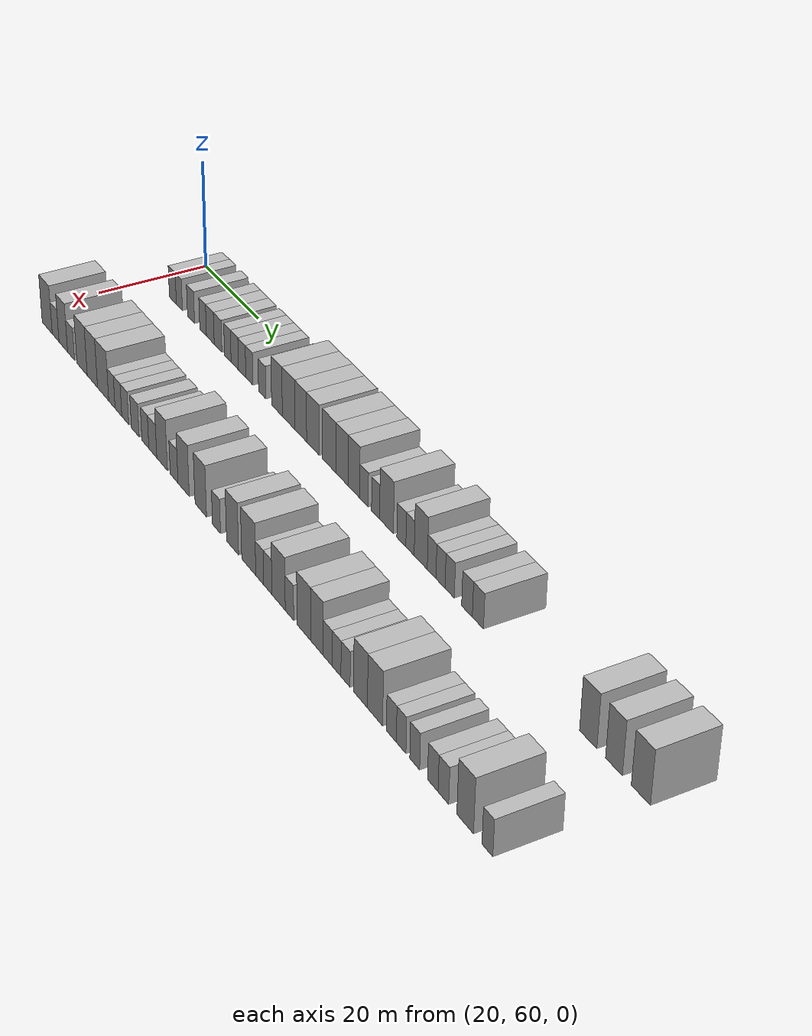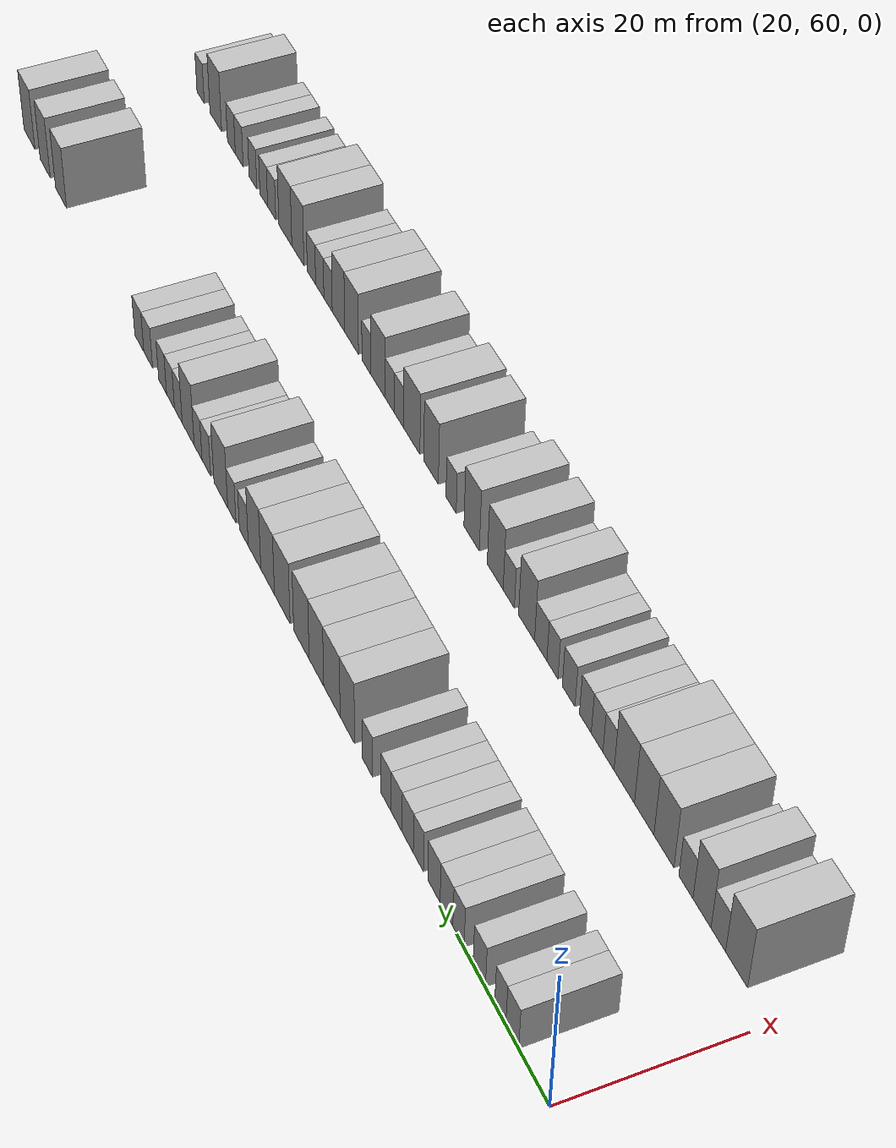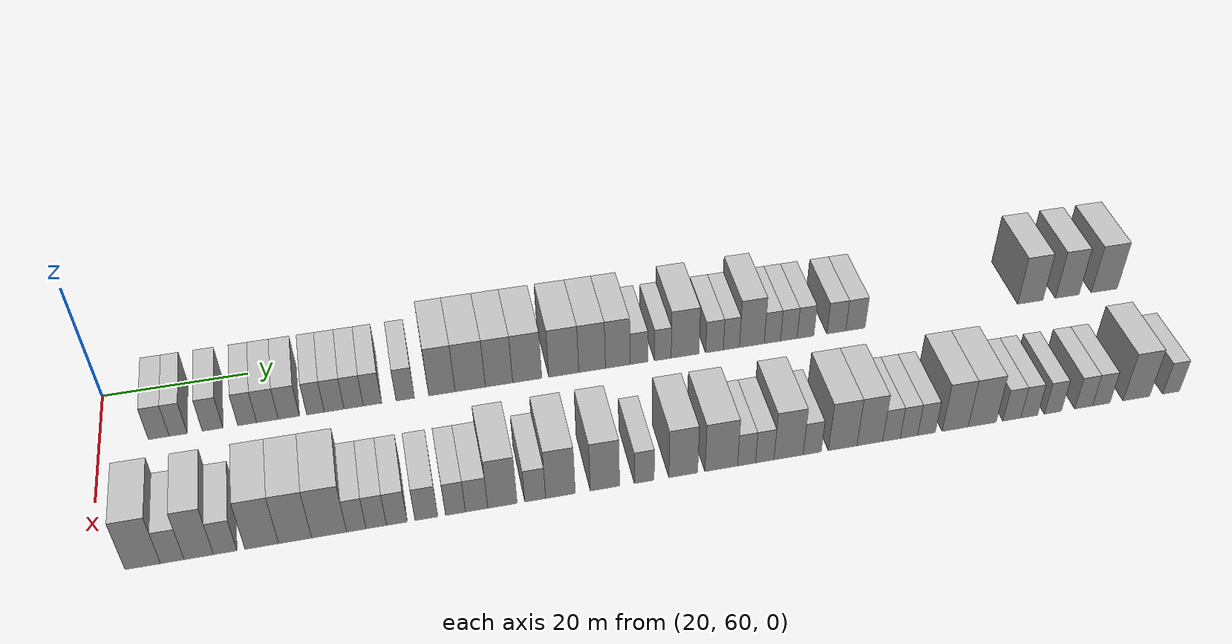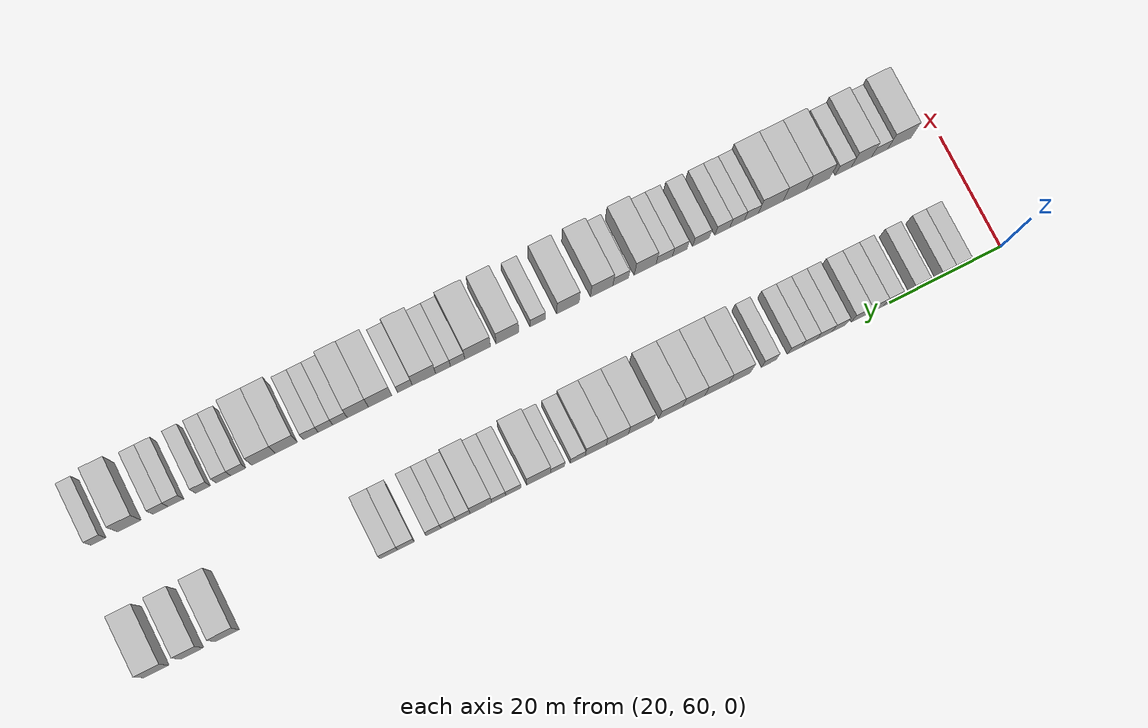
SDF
<sdf version="1.6">
 <world name="default">
  <model name="building_72">
   <static>1</static>
   <pose>25.0000 67.9203 0 0.000000 0.000000 0.000000</pose>
   <link name="link">
    <pose>0 0 3.00 0 0 0</pose>
    <collision name="collision"><geometry><box><size>10.0000 2.7523 6.0000</size></box></geometry></collision>
    <visual name="visual">
     <cast_shadows>0</cast_shadows>
     <geometry><box><size>10.0000 2.7523 6.0000</size></box></geometry>
     <material>
      <script>
       <uri>model://HANNAS_wall/materials/scripts</uri>
       <uri>model://HANNAS_wall/materials/textures</uri>
       <name>vrc/HANNAS_wall</name>
      </script>
     </material>
    </visual>
   </link>
  </model>
  <model name="building_73">
   <static>1</static>
   <pose>25.0000 70.5036 0 0.000000 0.000000 0.000000</pose>
   <link name="link">
    <pose>0 0 3.00 0 0 0</pose>
    <collision name="collision"><geometry><box><size>10.0000 2.4143 6.0000</size></box></geometry></collision>
    <visual name="visual">
     <cast_shadows>0</cast_shadows>
     <geometry><box><size>10.0000 2.4143 6.0000</size></box></geometry>
     <material>
      <script>
       <uri>model://HANNAS_wall/materials/scripts</uri>
       <uri>model://HANNAS_wall/materials/textures</uri>
       <name>vrc/HANNAS_wall</name>
      </script>
     </material>
    </visual>
   </link>
  </model>
  <model name="building_74">
   <static>1</static>
   <pose>25.0000 75.0879 0 0.000000 0.000000 0.000000</pose>
   <link name="link">
    <pose>0 0 3.00 0 0 0</pose>
    <collision name="collision"><geometry><box><size>10.0000 2.7543 6.0000</size></box></geometry></collision>
    <visual name="visual">
     <cast_shadows>0</cast_shadows>
     <geometry><box><size>10.0000 2.7543 6.0000</size></box></geometry>
     <material>
      <script>
       <uri>model://HANNAS_wall/materials/scripts</uri>
       <uri>model://HANNAS_wall/materials/textures</uri>
       <name>vrc/HANNAS_wall</name>
      </script>
     </material>
    </visual>
   </link>
  </model>
  <model name="building_75">
   <static>1</static>
   <pose>25.0000 79.7432 0 0.000000 0.000000 0.000000</pose>
   <link name="link">
    <pose>0 0 3.00 0 0 0</pose>
    <collision name="collision"><geometry><box><size>10.0000 2.5564 6.0000</size></box></geometry></collision>
    <visual name="visual">
     <cast_shadows>0</cast_shadows>
     <geometry><box><size>10.0000 2.5564 6.0000</size></box></geometry>
     <material>
      <script>
       <uri>model://HANNAS_wall/materials/scripts</uri>
       <uri>model://HANNAS_wall/materials/textures</uri>
       <name>vrc/HANNAS_wall</name>
      </script>
     </material>
    </visual>
   </link>
  </model>
  <model name="building_76">
   <static>1</static>
   <pose>25.0000 82.4895 0 0.000000 0.000000 0.000000</pose>
   <link name="link">
    <pose>0 0 3.00 0 0 0</pose>
    <collision name="collision"><geometry><box><size>10.0000 2.9362 6.0000</size></box></geometry></collision>
    <visual name="visual">
     <cast_shadows>0</cast_shadows>
     <geometry><box><size>10.0000 2.9362 6.0000</size></box></geometry>
     <material>
      <script>
       <uri>model://HANNAS_wall/materials/scripts</uri>
       <uri>model://HANNAS_wall/materials/textures</uri>
       <name>vrc/HANNAS_wall</name>
      </script>
     </material>
    </visual>
   </link>
  </model>
  <model name="building_77">
   <static>1</static>
   <pose>25.0000 85.3926 0 0.000000 0.000000 0.000000</pose>
   <link name="link">
    <pose>0 0 3.00 0 0 0</pose>
    <collision name="collision"><geometry><box><size>10.0000 2.8700 6.0000</size></box></geometry></collision>
    <visual name="visual">
     <cast_shadows>0</cast_shadows>
     <geometry><box><size>10.0000 2.8700 6.0000</size></box></geometry>
     <material>
      <script>
       <uri>model://HANNAS_wall/materials/scripts</uri>
       <uri>model://HANNAS_wall/materials/textures</uri>
       <name>vrc/HANNAS_wall</name>
      </script>
     </material>
    </visual>
   </link>
  </model>
  <model name="building_78">
   <static>1</static>
   <pose>25.0000 89.0332 0 0.000000 0.000000 0.000000</pose>
   <link name="link">
    <pose>0 0 3.00 0 0 0</pose>
    <collision name="collision"><geometry><box><size>10.0000 2.4111 6.0000</size></box></geometry></collision>
    <visual name="visual">
     <cast_shadows>0</cast_shadows>
     <geometry><box><size>10.0000 2.4111 6.0000</size></box></geometry>
     <material>
      <script>
       <uri>model://HANNAS_wall/materials/scripts</uri>
       <uri>model://HANNAS_wall/materials/textures</uri>
       <name>vrc/HANNAS_wall</name>
      </script>
     </material>
    </visual>
   </link>
  </model>
  <model name="building_79">
   <static>1</static>
   <pose>25.0000 91.5945 0 0.000000 0.000000 0.000000</pose>
   <link name="link">
    <pose>0 0 3.00 0 0 0</pose>
    <collision name="collision"><geometry><box><size>10.0000 2.7115 6.0000</size></box></geometry></collision>
    <visual name="visual">
     <cast_shadows>0</cast_shadows>
     <geometry><box><size>10.0000 2.7115 6.0000</size></box></geometry>
     <material>
      <script>
       <uri>model://HANNAS_wall/materials/scripts</uri>
       <uri>model://HANNAS_wall/materials/textures</uri>
       <name>vrc/HANNAS_wall</name>
      </script>
     </material>
    </visual>
   </link>
  </model>
  <model name="building_80">
   <static>1</static>
   <pose>25.0000 94.2840 0 0.000000 0.000000 0.000000</pose>
   <link name="link">
    <pose>0 0 3.00 0 0 0</pose>
    <collision name="collision"><geometry><box><size>10.0000 2.6676 6.0000</size></box></geometry></collision>
    <visual name="visual">
     <cast_shadows>0</cast_shadows>
     <geometry><box><size>10.0000 2.6676 6.0000</size></box></geometry>
     <material>
      <script>
       <uri>model://HANNAS_wall/materials/scripts</uri>
       <uri>model://HANNAS_wall/materials/textures</uri>
       <name>vrc/HANNAS_wall</name>
      </script>
     </material>
    </visual>
   </link>
  </model>
  <model name="building_81">
   <static>1</static>
   <pose>25.0000 96.8827 0 0.000000 0.000000 0.000000</pose>
   <link name="link">
    <pose>0 0 3.00 0 0 0</pose>
    <collision name="collision"><geometry><box><size>10.0000 2.5297 6.0000</size></box></geometry></collision>
    <visual name="visual">
     <cast_shadows>0</cast_shadows>
     <geometry><box><size>10.0000 2.5297 6.0000</size></box></geometry>
     <material>
      <script>
       <uri>model://HANNAS_wall/materials/scripts</uri>
       <uri>model://HANNAS_wall/materials/textures</uri>
       <name>vrc/HANNAS_wall</name>
      </script>
     </material>
    </visual>
   </link>
  </model>
  <model name="building_82">
   <static>1</static>
   <pose>25.0000 101.4351 0 0.000000 0.000000 0.000000</pose>
   <link name="link">
    <pose>0 0 3.00 0 0 0</pose>
    <collision name="collision"><geometry><box><size>10.0000 2.5752 6.0000</size></box></geometry></collision>
    <visual name="visual">
     <cast_shadows>0</cast_shadows>
     <geometry><box><size>10.0000 2.5752 6.0000</size></box></geometry>
     <material>
      <script>
       <uri>model://HANNAS_wall/materials/scripts</uri>
       <uri>model://HANNAS_wall/materials/textures</uri>
       <name>vrc/HANNAS_wall</name>
      </script>
     </material>
    </visual>
   </link>
  </model>
  <model name="building_83">
   <static>1</static>
   <pose>25.0000 106.5772 0 0.000000 0.000000 0.000000</pose>
   <link name="link">
    <pose>0 0 4.50 0 0 0</pose>
    <collision name="collision"><geometry><box><size>10.0000 3.7089 9.0000</size></box></geometry></collision>
    <visual name="visual">
     <cast_shadows>0</cast_shadows>
     <geometry><box><size>10.0000 3.7089 9.0000</size></box></geometry>
     <material>
      <script>
       <uri>model://HANNAS_wall/materials/scripts</uri>
       <uri>model://HANNAS_wall/materials/textures</uri>
       <name>vrc/HANNAS_wall</name>
      </script>
     </material>
    </visual>
   </link>
  </model>
  <model name="building_84">
   <static>1</static>
   <pose>25.0000 110.5741 0 0.000000 0.000000 0.000000</pose>
   <link name="link">
    <pose>0 0 4.50 0 0 0</pose>
    <collision name="collision"><geometry><box><size>10.0000 4.2849 9.0000</size></box></geometry></collision>
    <visual name="visual">
     <cast_shadows>0</cast_shadows>
     <geometry><box><size>10.0000 4.2849 9.0000</size></box></geometry>
     <material>
      <script>
       <uri>model://HANNAS_wall/materials/scripts</uri>
       <uri>model://HANNAS_wall/materials/textures</uri>
       <name>vrc/HANNAS_wall</name>
      </script>
     </material>
    </visual>
   </link>
  </model>
  <model name="building_85">
   <static>1</static>
   <pose>25.0000 114.6654 0 0.000000 0.000000 0.000000</pose>
   <link name="link">
    <pose>0 0 4.50 0 0 0</pose>
    <collision name="collision"><geometry><box><size>10.0000 3.8978 9.0000</size></box></geometry></collision>
    <visual name="visual">
     <cast_shadows>0</cast_shadows>
     <geometry><box><size>10.0000 3.8978 9.0000</size></box></geometry>
     <material>
      <script>
       <uri>model://HANNAS_wall/materials/scripts</uri>
       <uri>model://HANNAS_wall/materials/textures</uri>
       <name>vrc/HANNAS_wall</name>
      </script>
     </material>
    </visual>
   </link>
  </model>
  <model name="building_86">
   <static>1</static>
   <pose>25.0000 118.7020 0 0.000000 0.000000 0.000000</pose>
   <link name="link">
    <pose>0 0 4.50 0 0 0</pose>
    <collision name="collision"><geometry><box><size>10.0000 4.1752 9.0000</size></box></geometry></collision>
    <visual name="visual">
     <cast_shadows>0</cast_shadows>
     <geometry><box><size>10.0000 4.1752 9.0000</size></box></geometry>
     <material>
      <script>
       <uri>model://HANNAS_wall/materials/scripts</uri>
       <uri>model://HANNAS_wall/materials/textures</uri>
       <name>vrc/HANNAS_wall</name>
      </script>
     </material>
    </visual>
   </link>
  </model>
  <model name="building_87">
   <static>1</static>
   <pose>25.0000 123.9561 0 0.000000 0.000000 0.000000</pose>
   <link name="link">
    <pose>0 0 4.50 0 0 0</pose>
    <collision name="collision"><geometry><box><size>10.0000 4.3330 9.0000</size></box></geometry></collision>
    <visual name="visual">
     <cast_shadows>0</cast_shadows>
     <geometry><box><size>10.0000 4.3330 9.0000</size></box></geometry>
     <material>
      <script>
       <uri>model://HANNAS_wall/materials/scripts</uri>
       <uri>model://HANNAS_wall/materials/textures</uri>
       <name>vrc/HANNAS_wall</name>
      </script>
     </material>
    </visual>
   </link>
  </model>
  <model name="building_88">
   <static>1</static>
   <pose>25.0000 128.0601 0 0.000000 0.000000 0.000000</pose>
   <link name="link">
    <pose>0 0 4.50 0 0 0</pose>
    <collision name="collision"><geometry><box><size>10.0000 3.8750 9.0000</size></box></geometry></collision>
    <visual name="visual">
     <cast_shadows>0</cast_shadows>
     <geometry><box><size>10.0000 3.8750 9.0000</size></box></geometry>
     <material>
      <script>
       <uri>model://HANNAS_wall/materials/scripts</uri>
       <uri>model://HANNAS_wall/materials/textures</uri>
       <name>vrc/HANNAS_wall</name>
      </script>
     </material>
    </visual>
   </link>
  </model>
  <model name="building_89">
   <static>1</static>
   <pose>25.0000 131.8027 0 0.000000 0.000000 0.000000</pose>
   <link name="link">
    <pose>0 0 4.50 0 0 0</pose>
    <collision name="collision"><geometry><box><size>10.0000 3.6101 9.0000</size></box></geometry></collision>
    <visual name="visual">
     <cast_shadows>0</cast_shadows>
     <geometry><box><size>10.0000 3.6101 9.0000</size></box></geometry>
     <material>
      <script>
       <uri>model://HANNAS_wall/materials/scripts</uri>
       <uri>model://HANNAS_wall/materials/textures</uri>
       <name>vrc/HANNAS_wall</name>
      </script>
     </material>
    </visual>
   </link>
  </model>
  <model name="building_90">
   <static>1</static>
   <pose>25.0000 134.9088 0 0.000000 0.000000 0.000000</pose>
   <link name="link">
    <pose>0 0 3.00 0 0 0</pose>
    <collision name="collision"><geometry><box><size>10.0000 2.6020 6.0000</size></box></geometry></collision>
    <visual name="visual">
     <cast_shadows>0</cast_shadows>
     <geometry><box><size>10.0000 2.6020 6.0000</size></box></geometry>
     <material>
      <script>
       <uri>model://HANNAS_wall/materials/scripts</uri>
       <uri>model://HANNAS_wall/materials/textures</uri>
       <name>vrc/HANNAS_wall</name>
      </script>
     </material>
    </visual>
   </link>
  </model>
  <model name="building_91">
   <static>1</static>
   <pose>25.0000 138.4328 0 0.000000 0.000000 0.000000</pose>
   <link name="link">
    <pose>0 0 3.00 0 0 0</pose>
    <collision name="collision"><geometry><box><size>10.0000 2.4461 6.0000</size></box></geometry></collision>
    <visual name="visual">
     <cast_shadows>0</cast_shadows>
     <geometry><box><size>10.0000 2.4461 6.0000</size></box></geometry>
     <material>
      <script>
       <uri>model://HANNAS_wall/materials/scripts</uri>
       <uri>model://HANNAS_wall/materials/textures</uri>
       <name>vrc/HANNAS_wall</name>
      </script>
     </material>
    </visual>
   </link>
  </model>
  <model name="building_92">
   <static>1</static>
   <pose>25.0000 141.7189 0 0.000000 0.000000 0.000000</pose>
   <link name="link">
    <pose>0 0 4.50 0 0 0</pose>
    <collision name="collision"><geometry><box><size>10.0000 4.1261 9.0000</size></box></geometry></collision>
    <visual name="visual">
     <cast_shadows>0</cast_shadows>
     <geometry><box><size>10.0000 4.1261 9.0000</size></box></geometry>
     <material>
      <script>
       <uri>model://HANNAS_wall/materials/scripts</uri>
       <uri>model://HANNAS_wall/materials/textures</uri>
       <name>vrc/HANNAS_wall</name>
      </script>
     </material>
    </visual>
   </link>
  </model>
  <model name="building_93">
   <static>1</static>
   <pose>25.0000 146.1069 0 0.000000 0.000000 0.000000</pose>
   <link name="link">
    <pose>0 0 3.00 0 0 0</pose>
    <collision name="collision"><geometry><box><size>10.0000 2.6499 6.0000</size></box></geometry></collision>
    <visual name="visual">
     <cast_shadows>0</cast_shadows>
     <geometry><box><size>10.0000 2.6499 6.0000</size></box></geometry>
     <material>
      <script>
       <uri>model://HANNAS_wall/materials/scripts</uri>
       <uri>model://HANNAS_wall/materials/textures</uri>
       <name>vrc/HANNAS_wall</name>
      </script>
     </material>
    </visual>
   </link>
  </model>
  <model name="building_94">
   <static>1</static>
   <pose>25.0000 148.6392 0 0.000000 0.000000 0.000000</pose>
   <link name="link">
    <pose>0 0 3.00 0 0 0</pose>
    <collision name="collision"><geometry><box><size>10.0000 2.4146 6.0000</size></box></geometry></collision>
    <visual name="visual">
     <cast_shadows>0</cast_shadows>
     <geometry><box><size>10.0000 2.4146 6.0000</size></box></geometry>
     <material>
      <script>
       <uri>model://HANNAS_wall/materials/scripts</uri>
       <uri>model://HANNAS_wall/materials/textures</uri>
       <name>vrc/HANNAS_wall</name>
      </script>
     </material>
    </visual>
   </link>
  </model>
  <model name="building_95">
   <static>1</static>
   <pose>25.0000 151.7168 0 0.000000 0.000000 0.000000</pose>
   <link name="link">
    <pose>0 0 4.50 0 0 0</pose>
    <collision name="collision"><geometry><box><size>10.0000 3.7404 9.0000</size></box></geometry></collision>
    <visual name="visual">
     <cast_shadows>0</cast_shadows>
     <geometry><box><size>10.0000 3.7404 9.0000</size></box></geometry>
     <material>
      <script>
       <uri>model://HANNAS_wall/materials/scripts</uri>
       <uri>model://HANNAS_wall/materials/textures</uri>
       <name>vrc/HANNAS_wall</name>
      </script>
     </material>
    </visual>
   </link>
  </model>
  <model name="building_96">
   <static>1</static>
   <pose>25.0000 154.8170 0 0.000000 0.000000 0.000000</pose>
   <link name="link">
    <pose>0 0 3.00 0 0 0</pose>
    <collision name="collision"><geometry><box><size>10.0000 2.4600 6.0000</size></box></geometry></collision>
    <visual name="visual">
     <cast_shadows>0</cast_shadows>
     <geometry><box><size>10.0000 2.4600 6.0000</size></box></geometry>
     <material>
      <script>
       <uri>model://HANNAS_wall/materials/scripts</uri>
       <uri>model://HANNAS_wall/materials/textures</uri>
       <name>vrc/HANNAS_wall</name>
      </script>
     </material>
    </visual>
   </link>
  </model>
  <model name="building_97">
   <static>1</static>
   <pose>25.0000 157.3134 0 0.000000 0.000000 0.000000</pose>
   <link name="link">
    <pose>0 0 3.00 0 0 0</pose>
    <collision name="collision"><geometry><box><size>10.0000 2.5329 6.0000</size></box></geometry></collision>
    <visual name="visual">
     <cast_shadows>0</cast_shadows>
     <geometry><box><size>10.0000 2.5329 6.0000</size></box></geometry>
     <material>
      <script>
       <uri>model://HANNAS_wall/materials/scripts</uri>
       <uri>model://HANNAS_wall/materials/textures</uri>
       <name>vrc/HANNAS_wall</name>
      </script>
     </material>
    </visual>
   </link>
  </model>
  <model name="building_98">
   <static>1</static>
   <pose>25.0000 159.8595 0 0.000000 0.000000 0.000000</pose>
   <link name="link">
    <pose>0 0 3.00 0 0 0</pose>
    <collision name="collision"><geometry><box><size>10.0000 2.5592 6.0000</size></box></geometry></collision>
    <visual name="visual">
     <cast_shadows>0</cast_shadows>
     <geometry><box><size>10.0000 2.5592 6.0000</size></box></geometry>
     <material>
      <script>
       <uri>model://HANNAS_wall/materials/scripts</uri>
       <uri>model://HANNAS_wall/materials/textures</uri>
       <name>vrc/HANNAS_wall</name>
      </script>
     </material>
    </visual>
   </link>
  </model>
  <model name="building_99">
   <static>1</static>
   <pose>25.0000 164.5826 0 0.000000 0.000000 0.000000</pose>
   <link name="link">
    <pose>0 0 3.00 0 0 0</pose>
    <collision name="collision"><geometry><box><size>10.0000 2.8870 6.0000</size></box></geometry></collision>
    <visual name="visual">
     <cast_shadows>0</cast_shadows>
     <geometry><box><size>10.0000 2.8870 6.0000</size></box></geometry>
     <material>
      <script>
       <uri>model://HANNAS_wall/materials/scripts</uri>
       <uri>model://HANNAS_wall/materials/textures</uri>
       <name>vrc/HANNAS_wall</name>
      </script>
     </material>
    </visual>
   </link>
  </model>
  <model name="building_100">
   <static>1</static>
   <pose>25.0000 167.5210 0 0.000000 0.000000 0.000000</pose>
   <link name="link">
    <pose>0 0 3.00 0 0 0</pose>
    <collision name="collision"><geometry><box><size>10.0000 2.9899 6.0000</size></box></geometry></collision>
    <visual name="visual">
     <cast_shadows>0</cast_shadows>
     <geometry><box><size>10.0000 2.9899 6.0000</size></box></geometry>
     <material>
      <script>
       <uri>model://HANNAS_wall/materials/scripts</uri>
       <uri>model://HANNAS_wall/materials/textures</uri>
       <name>vrc/HANNAS_wall</name>
      </script>
     </material>
    </visual>
   </link>
  </model>
  <model name="building_101">
   <static>1</static>
   <pose>25.0000 195.1196 0 0.000000 0.000000 0.000000</pose>
   <link name="link">
    <pose>0 0 4.50 0 0 0</pose>
    <collision name="collision"><geometry><box><size>10.0000 4.0691 9.0000</size></box></geometry></collision>
    <visual name="visual">
     <cast_shadows>0</cast_shadows>
     <geometry><box><size>10.0000 4.0691 9.0000</size></box></geometry>
     <material>
      <script>
       <uri>model://HANNAS_wall/materials/scripts</uri>
       <uri>model://HANNAS_wall/materials/textures</uri>
       <name>vrc/HANNAS_wall</name>
      </script>
     </material>
    </visual>
   </link>
  </model>
  <model name="building_102">
   <static>1</static>
   <pose>25.0000 201.0751 0 0.000000 0.000000 0.000000</pose>
   <link name="link">
    <pose>0 0 4.50 0 0 0</pose>
    <collision name="collision"><geometry><box><size>10.0000 3.8419 9.0000</size></box></geometry></collision>
    <visual name="visual">
     <cast_shadows>0</cast_shadows>
     <geometry><box><size>10.0000 3.8419 9.0000</size></box></geometry>
     <material>
      <script>
       <uri>model://HANNAS_wall/materials/scripts</uri>
       <uri>model://HANNAS_wall/materials/textures</uri>
       <name>vrc/HANNAS_wall</name>
      </script>
     </material>
    </visual>
   </link>
  </model>
  <model name="building_103">
   <static>1</static>
   <pose>25.0000 207.1179 0 0.000000 0.000000 0.000000</pose>
   <link name="link">
    <pose>0 0 4.50 0 0 0</pose>
    <collision name="collision"><geometry><box><size>10.0000 4.2436 9.0000</size></box></geometry></collision>
    <visual name="visual">
     <cast_shadows>0</cast_shadows>
     <geometry><box><size>10.0000 4.2436 9.0000</size></box></geometry>
     <material>
      <script>
       <uri>model://HANNAS_wall/materials/scripts</uri>
       <uri>model://HANNAS_wall/materials/textures</uri>
       <name>vrc/HANNAS_wall</name>
      </script>
     </material>
    </visual>
   </link>
  </model>
  <model name="building_173">
   <static>1</static>
   <pose>47.0000 66.4232 0 0.000000 0.000000 0.000000</pose>
   <link name="link">
    <pose>0 0 4.50 0 0 0</pose>
    <collision name="collision"><geometry><box><size>10.0000 4.3111 9.0000</size></box></geometry></collision>
    <visual name="visual">
     <cast_shadows>0</cast_shadows>
     <geometry><box><size>10.0000 4.3111 9.0000</size></box></geometry>
     <material>
      <script>
       <uri>model://HANNAS_wall/materials/scripts</uri>
       <uri>model://HANNAS_wall/materials/textures</uri>
       <name>vrc/HANNAS_wall</name>
      </script>
     </material>
    </visual>
   </link>
  </model>
  <model name="building_174">
   <static>1</static>
   <pose>47.0000 70.0201 0 0.000000 0.000000 0.000000</pose>
   <link name="link">
    <pose>0 0 3.00 0 0 0</pose>
    <collision name="collision"><geometry><box><size>10.0000 2.8826 6.0000</size></box></geometry></collision>
    <visual name="visual">
     <cast_shadows>0</cast_shadows>
     <geometry><box><size>10.0000 2.8826 6.0000</size></box></geometry>
     <material>
      <script>
       <uri>model://HANNAS_wall/materials/scripts</uri>
       <uri>model://HANNAS_wall/materials/textures</uri>
       <name>vrc/HANNAS_wall</name>
      </script>
     </material>
    </visual>
   </link>
  </model>
  <model name="building_175">
   <static>1</static>
   <pose>47.0000 73.2749 0 0.000000 0.000000 0.000000</pose>
   <link name="link">
    <pose>0 0 4.50 0 0 0</pose>
    <collision name="collision"><geometry><box><size>10.0000 3.6271 9.0000</size></box></geometry></collision>
    <visual name="visual">
     <cast_shadows>0</cast_shadows>
     <geometry><box><size>10.0000 3.6271 9.0000</size></box></geometry>
     <material>
      <script>
       <uri>model://HANNAS_wall/materials/scripts</uri>
       <uri>model://HANNAS_wall/materials/textures</uri>
       <name>vrc/HANNAS_wall</name>
      </script>
     </material>
    </visual>
   </link>
  </model>
  <model name="building_176">
   <static>1</static>
   <pose>47.0000 76.5347 0 0.000000 0.000000 0.000000</pose>
   <link name="link">
    <pose>0 0 3.00 0 0 0</pose>
    <collision name="collision"><geometry><box><size>10.0000 2.8926 6.0000</size></box></geometry></collision>
    <visual name="visual">
     <cast_shadows>0</cast_shadows>
     <geometry><box><size>10.0000 2.8926 6.0000</size></box></geometry>
     <material>
      <script>
       <uri>model://HANNAS_wall/materials/scripts</uri>
       <uri>model://HANNAS_wall/materials/textures</uri>
       <name>vrc/HANNAS_wall</name>
      </script>
     </material>
    </visual>
   </link>
  </model>
  <model name="building_177">
   <static>1</static>
   <pose>47.0000 81.0772 0 0.000000 0.000000 0.000000</pose>
   <link name="link">
    <pose>0 0 4.50 0 0 0</pose>
    <collision name="collision"><geometry><box><size>10.0000 4.1924 9.0000</size></box></geometry></collision>
    <visual name="visual">
     <cast_shadows>0</cast_shadows>
     <geometry><box><size>10.0000 4.1924 9.0000</size></box></geometry>
     <material>
      <script>
       <uri>model://HANNAS_wall/materials/scripts</uri>
       <uri>model://HANNAS_wall/materials/textures</uri>
       <name>vrc/HANNAS_wall</name>
      </script>
     </material>
    </visual>
   </link>
  </model>
  <model name="building_178">
   <static>1</static>
   <pose>47.0000 85.2466 0 0.000000 0.000000 0.000000</pose>
   <link name="link">
    <pose>0 0 4.50 0 0 0</pose>
    <collision name="collision"><geometry><box><size>10.0000 4.1463 9.0000</size></box></geometry></collision>
    <visual name="visual">
     <cast_shadows>0</cast_shadows>
     <geometry><box><size>10.0000 4.1463 9.0000</size></box></geometry>
     <material>
      <script>
       <uri>model://HANNAS_wall/materials/scripts</uri>
       <uri>model://HANNAS_wall/materials/textures</uri>
       <name>vrc/HANNAS_wall</name>
      </script>
     </material>
    </visual>
   </link>
  </model>
  <model name="building_179">
   <static>1</static>
   <pose>47.0000 89.5381 0 0.000000 0.000000 0.000000</pose>
   <link name="link">
    <pose>0 0 4.50 0 0 0</pose>
    <collision name="collision"><geometry><box><size>10.0000 4.4367 9.0000</size></box></geometry></collision>
    <visual name="visual">
     <cast_shadows>0</cast_shadows>
     <geometry><box><size>10.0000 4.4367 9.0000</size></box></geometry>
     <material>
      <script>
       <uri>model://HANNAS_wall/materials/scripts</uri>
       <uri>model://HANNAS_wall/materials/textures</uri>
       <name>vrc/HANNAS_wall</name>
      </script>
     </material>
    </visual>
   </link>
  </model>
  <model name="building_180">
   <static>1</static>
   <pose>47.0000 92.9904 0 0.000000 0.000000 0.000000</pose>
   <link name="link">
    <pose>0 0 3.00 0 0 0</pose>
    <collision name="collision"><geometry><box><size>10.0000 2.4679 6.0000</size></box></geometry></collision>
    <visual name="visual">
     <cast_shadows>0</cast_shadows>
     <geometry><box><size>10.0000 2.4679 6.0000</size></box></geometry>
     <material>
      <script>
       <uri>model://HANNAS_wall/materials/scripts</uri>
       <uri>model://HANNAS_wall/materials/textures</uri>
       <name>vrc/HANNAS_wall</name>
      </script>
     </material>
    </visual>
   </link>
  </model>
  <model name="building_181">
   <static>1</static>
   <pose>47.0000 95.5252 0 0.000000 0.000000 0.000000</pose>
   <link name="link">
    <pose>0 0 3.00 0 0 0</pose>
    <collision name="collision"><geometry><box><size>10.0000 2.6016 6.0000</size></box></geometry></collision>
    <visual name="visual">
     <cast_shadows>0</cast_shadows>
     <geometry><box><size>10.0000 2.6016 6.0000</size></box></geometry>
     <material>
      <script>
       <uri>model://HANNAS_wall/materials/scripts</uri>
       <uri>model://HANNAS_wall/materials/textures</uri>
       <name>vrc/HANNAS_wall</name>
      </script>
     </material>
    </visual>
   </link>
  </model>
  <model name="building_182">
   <static>1</static>
   <pose>47.0000 98.1602 0 0.000000 0.000000 0.000000</pose>
   <link name="link">
    <pose>0 0 3.00 0 0 0</pose>
    <collision name="collision"><geometry><box><size>10.0000 2.6685 6.0000</size></box></geometry></collision>
    <visual name="visual">
     <cast_shadows>0</cast_shadows>
     <geometry><box><size>10.0000 2.6685 6.0000</size></box></geometry>
     <material>
      <script>
       <uri>model://HANNAS_wall/materials/scripts</uri>
       <uri>model://HANNAS_wall/materials/textures</uri>
       <name>vrc/HANNAS_wall</name>
      </script>
     </material>
    </visual>
   </link>
  </model>
  <model name="building_183">
   <static>1</static>
   <pose>47.0000 101.9641 0 0.000000 0.000000 0.000000</pose>
   <link name="link">
    <pose>0 0 3.00 0 0 0</pose>
    <collision name="collision"><geometry><box><size>10.0000 2.9393 6.0000</size></box></geometry></collision>
    <visual name="visual">
     <cast_shadows>0</cast_shadows>
     <geometry><box><size>10.0000 2.9393 6.0000</size></box></geometry>
     <material>
      <script>
       <uri>model://HANNAS_wall/materials/scripts</uri>
       <uri>model://HANNAS_wall/materials/textures</uri>
       <name>vrc/HANNAS_wall</name>
      </script>
     </material>
    </visual>
   </link>
  </model>
  <model name="building_184">
   <static>1</static>
   <pose>47.0000 105.7287 0 0.000000 0.000000 0.000000</pose>
   <link name="link">
    <pose>0 0 3.00 0 0 0</pose>
    <collision name="collision"><geometry><box><size>10.0000 2.5897 6.0000</size></box></geometry></collision>
    <visual name="visual">
     <cast_shadows>0</cast_shadows>
     <geometry><box><size>10.0000 2.5897 6.0000</size></box></geometry>
     <material>
      <script>
       <uri>model://HANNAS_wall/materials/scripts</uri>
       <uri>model://HANNAS_wall/materials/textures</uri>
       <name>vrc/HANNAS_wall</name>
      </script>
     </material>
    </visual>
   </link>
  </model>
  <model name="building_185">
   <static>1</static>
   <pose>47.0000 108.4833 0 0.000000 0.000000 0.000000</pose>
   <link name="link">
    <pose>0 0 3.00 0 0 0</pose>
    <collision name="collision"><geometry><box><size>10.0000 2.9196 6.0000</size></box></geometry></collision>
    <visual name="visual">
     <cast_shadows>0</cast_shadows>
     <geometry><box><size>10.0000 2.9196 6.0000</size></box></geometry>
     <material>
      <script>
       <uri>model://HANNAS_wall/materials/scripts</uri>
       <uri>model://HANNAS_wall/materials/textures</uri>
       <name>vrc/HANNAS_wall</name>
      </script>
     </material>
    </visual>
   </link>
  </model>
  <model name="building_186">
   <static>1</static>
   <pose>47.0000 111.8707 0 0.000000 0.000000 0.000000</pose>
   <link name="link">
    <pose>0 0 4.50 0 0 0</pose>
    <collision name="collision"><geometry><box><size>10.0000 3.8552 9.0000</size></box></geometry></collision>
    <visual name="visual">
     <cast_shadows>0</cast_shadows>
     <geometry><box><size>10.0000 3.8552 9.0000</size></box></geometry>
     <material>
      <script>
       <uri>model://HANNAS_wall/materials/scripts</uri>
       <uri>model://HANNAS_wall/materials/textures</uri>
       <name>vrc/HANNAS_wall</name>
      </script>
     </material>
    </visual>
   </link>
  </model>
  <model name="building_187">
   <static>1</static>
   <pose>47.0000 116.1807 0 0.000000 0.000000 0.000000</pose>
   <link name="link">
    <pose>0 0 3.00 0 0 0</pose>
    <collision name="collision"><geometry><box><size>10.0000 2.7648 6.0000</size></box></geometry></collision>
    <visual name="visual">
     <cast_shadows>0</cast_shadows>
     <geometry><box><size>10.0000 2.7648 6.0000</size></box></geometry>
     <material>
      <script>
       <uri>model://HANNAS_wall/materials/scripts</uri>
       <uri>model://HANNAS_wall/materials/textures</uri>
       <name>vrc/HANNAS_wall</name>
      </script>
     </material>
    </visual>
   </link>
  </model>
  <model name="building_188">
   <static>1</static>
   <pose>47.0000 119.5341 0 0.000000 0.000000 0.000000</pose>
   <link name="link">
    <pose>0 0 4.50 0 0 0</pose>
    <collision name="collision"><geometry><box><size>10.0000 3.9419 9.0000</size></box></geometry></collision>
    <visual name="visual">
     <cast_shadows>0</cast_shadows>
     <geometry><box><size>10.0000 3.9419 9.0000</size></box></geometry>
     <material>
      <script>
       <uri>model://HANNAS_wall/materials/scripts</uri>
       <uri>model://HANNAS_wall/materials/textures</uri>
       <name>vrc/HANNAS_wall</name>
      </script>
     </material>
    </visual>
   </link>
  </model>
  <model name="building_189">
   <static>1</static>
   <pose>47.0000 125.4730 0 0.000000 0.000000 0.000000</pose>
   <link name="link">
    <pose>0 0 4.50 0 0 0</pose>
    <collision name="collision"><geometry><box><size>10.0000 3.9360 9.0000</size></box></geometry></collision>
    <visual name="visual">
     <cast_shadows>0</cast_shadows>
     <geometry><box><size>10.0000 3.9360 9.0000</size></box></geometry>
     <material>
      <script>
       <uri>model://HANNAS_wall/materials/scripts</uri>
       <uri>model://HANNAS_wall/materials/textures</uri>
       <name>vrc/HANNAS_wall</name>
      </script>
     </material>
    </visual>
   </link>
  </model>
  <model name="building_190">
   <static>1</static>
   <pose>47.0000 130.7805 0 0.000000 0.000000 0.000000</pose>
   <link name="link">
    <pose>0 0 3.00 0 0 0</pose>
    <collision name="collision"><geometry><box><size>10.0000 2.6791 6.0000</size></box></geometry></collision>
    <visual name="visual">
     <cast_shadows>0</cast_shadows>
     <geometry><box><size>10.0000 2.6791 6.0000</size></box></geometry>
     <material>
      <script>
       <uri>model://HANNAS_wall/materials/scripts</uri>
       <uri>model://HANNAS_wall/materials/textures</uri>
       <name>vrc/HANNAS_wall</name>
      </script>
     </material>
    </visual>
   </link>
  </model>
  <model name="building_191">
   <static>1</static>
   <pose>47.0000 136.0894 0 0.000000 0.000000 0.000000</pose>
   <link name="link">
    <pose>0 0 4.50 0 0 0</pose>
    <collision name="collision"><geometry><box><size>10.0000 3.9386 9.0000</size></box></geometry></collision>
    <visual name="visual">
     <cast_shadows>0</cast_shadows>
     <geometry><box><size>10.0000 3.9386 9.0000</size></box></geometry>
     <material>
      <script>
       <uri>model://HANNAS_wall/materials/scripts</uri>
       <uri>model://HANNAS_wall/materials/textures</uri>
       <name>vrc/HANNAS_wall</name>
      </script>
     </material>
    </visual>
   </link>
  </model>
  <model name="building_192">
   <static>1</static>
   <pose>47.0000 141.3068 0 0.000000 0.000000 0.000000</pose>
   <link name="link">
    <pose>0 0 4.50 0 0 0</pose>
    <collision name="collision"><geometry><box><size>10.0000 4.4962 9.0000</size></box></geometry></collision>
    <visual name="visual">
     <cast_shadows>0</cast_shadows>
     <geometry><box><size>10.0000 4.4962 9.0000</size></box></geometry>
     <material>
      <script>
       <uri>model://HANNAS_wall/materials/scripts</uri>
       <uri>model://HANNAS_wall/materials/textures</uri>
       <name>vrc/HANNAS_wall</name>
      </script>
     </material>
    </visual>
   </link>
  </model>
  <model name="building_193">
   <static>1</static>
   <pose>47.0000 144.8000 0 0.000000 0.000000 0.000000</pose>
   <link name="link">
    <pose>0 0 3.00 0 0 0</pose>
    <collision name="collision"><geometry><box><size>10.0000 2.4901 6.0000</size></box></geometry></collision>
    <visual name="visual">
     <cast_shadows>0</cast_shadows>
     <geometry><box><size>10.0000 2.4901 6.0000</size></box></geometry>
     <material>
      <script>
       <uri>model://HANNAS_wall/materials/scripts</uri>
       <uri>model://HANNAS_wall/materials/textures</uri>
       <name>vrc/HANNAS_wall</name>
      </script>
     </material>
    </visual>
   </link>
  </model>
  <model name="building_194">
   <static>1</static>
   <pose>47.0000 147.3347 0 0.000000 0.000000 0.000000</pose>
   <link name="link">
    <pose>0 0 3.00 0 0 0</pose>
    <collision name="collision"><geometry><box><size>10.0000 2.5793 6.0000</size></box></geometry></collision>
    <visual name="visual">
     <cast_shadows>0</cast_shadows>
     <geometry><box><size>10.0000 2.5793 6.0000</size></box></geometry>
     <material>
      <script>
       <uri>model://HANNAS_wall/materials/scripts</uri>
       <uri>model://HANNAS_wall/materials/textures</uri>
       <name>vrc/HANNAS_wall</name>
      </script>
     </material>
    </visual>
   </link>
  </model>
  <model name="building_195">
   <static>1</static>
   <pose>47.0000 150.6624 0 0.000000 0.000000 0.000000</pose>
   <link name="link">
    <pose>0 0 4.50 0 0 0</pose>
    <collision name="collision"><geometry><box><size>10.0000 4.0761 9.0000</size></box></geometry></collision>
    <visual name="visual">
     <cast_shadows>0</cast_shadows>
     <geometry><box><size>10.0000 4.0761 9.0000</size></box></geometry>
     <material>
      <script>
       <uri>model://HANNAS_wall/materials/scripts</uri>
       <uri>model://HANNAS_wall/materials/textures</uri>
       <name>vrc/HANNAS_wall</name>
      </script>
     </material>
    </visual>
   </link>
  </model>
  <model name="building_196">
   <static>1</static>
   <pose>47.0000 153.9770 0 0.000000 0.000000 0.000000</pose>
   <link name="link">
    <pose>0 0 3.00 0 0 0</pose>
    <collision name="collision"><geometry><box><size>10.0000 2.5531 6.0000</size></box></geometry></collision>
    <visual name="visual">
     <cast_shadows>0</cast_shadows>
     <geometry><box><size>10.0000 2.5531 6.0000</size></box></geometry>
     <material>
      <script>
       <uri>model://HANNAS_wall/materials/scripts</uri>
       <uri>model://HANNAS_wall/materials/textures</uri>
       <name>vrc/HANNAS_wall</name>
      </script>
     </material>
    </visual>
   </link>
  </model>
  <model name="building_197">
   <static>1</static>
   <pose>47.0000 158.2779 0 0.000000 0.000000 0.000000</pose>
   <link name="link">
    <pose>0 0 4.50 0 0 0</pose>
    <collision name="collision"><geometry><box><size>10.0000 4.0485 9.0000</size></box></geometry></collision>
    <visual name="visual">
     <cast_shadows>0</cast_shadows>
     <geometry><box><size>10.0000 4.0485 9.0000</size></box></geometry>
     <material>
      <script>
       <uri>model://HANNAS_wall/materials/scripts</uri>
       <uri>model://HANNAS_wall/materials/textures</uri>
       <name>vrc/HANNAS_wall</name>
      </script>
     </material>
    </visual>
   </link>
  </model>
  <model name="building_198">
   <static>1</static>
   <pose>47.0000 162.1366 0 0.000000 0.000000 0.000000</pose>
   <link name="link">
    <pose>0 0 4.50 0 0 0</pose>
    <collision name="collision"><geometry><box><size>10.0000 3.6689 9.0000</size></box></geometry></collision>
    <visual name="visual">
     <cast_shadows>0</cast_shadows>
     <geometry><box><size>10.0000 3.6689 9.0000</size></box></geometry>
     <material>
      <script>
       <uri>model://HANNAS_wall/materials/scripts</uri>
       <uri>model://HANNAS_wall/materials/textures</uri>
       <name>vrc/HANNAS_wall</name>
      </script>
     </material>
    </visual>
   </link>
  </model>
  <model name="building_199">
   <static>1</static>
   <pose>47.0000 165.2255 0 0.000000 0.000000 0.000000</pose>
   <link name="link">
    <pose>0 0 3.00 0 0 0</pose>
    <collision name="collision"><geometry><box><size>10.0000 2.5089 6.0000</size></box></geometry></collision>
    <visual name="visual">
     <cast_shadows>0</cast_shadows>
     <geometry><box><size>10.0000 2.5089 6.0000</size></box></geometry>
     <material>
      <script>
       <uri>model://HANNAS_wall/materials/scripts</uri>
       <uri>model://HANNAS_wall/materials/textures</uri>
       <name>vrc/HANNAS_wall</name>
      </script>
     </material>
    </visual>
   </link>
  </model>
  <model name="building_200">
   <static>1</static>
   <pose>47.0000 167.7386 0 0.000000 0.000000 0.000000</pose>
   <link name="link">
    <pose>0 0 3.00 0 0 0</pose>
    <collision name="collision"><geometry><box><size>10.0000 2.5173 6.0000</size></box></geometry></collision>
    <visual name="visual">
     <cast_shadows>0</cast_shadows>
     <geometry><box><size>10.0000 2.5173 6.0000</size></box></geometry>
     <material>
      <script>
       <uri>model://HANNAS_wall/materials/scripts</uri>
       <uri>model://HANNAS_wall/materials/textures</uri>
       <name>vrc/HANNAS_wall</name>
      </script>
     </material>
    </visual>
   </link>
  </model>
  <model name="building_201">
   <static>1</static>
   <pose>47.0000 170.2810 0 0.000000 0.000000 0.000000</pose>
   <link name="link">
    <pose>0 0 3.00 0 0 0</pose>
    <collision name="collision"><geometry><box><size>10.0000 2.5674 6.0000</size></box></geometry></collision>
    <visual name="visual">
     <cast_shadows>0</cast_shadows>
     <geometry><box><size>10.0000 2.5674 6.0000</size></box></geometry>
     <material>
      <script>
       <uri>model://HANNAS_wall/materials/scripts</uri>
       <uri>model://HANNAS_wall/materials/textures</uri>
       <name>vrc/HANNAS_wall</name>
      </script>
     </material>
    </visual>
   </link>
  </model>
  <model name="building_202">
   <static>1</static>
   <pose>47.0000 174.4542 0 0.000000 0.000000 0.000000</pose>
   <link name="link">
    <pose>0 0 4.50 0 0 0</pose>
    <collision name="collision"><geometry><box><size>10.0000 3.7790 9.0000</size></box></geometry></collision>
    <visual name="visual">
     <cast_shadows>0</cast_shadows>
     <geometry><box><size>10.0000 3.7790 9.0000</size></box></geometry>
     <material>
      <script>
       <uri>model://HANNAS_wall/materials/scripts</uri>
       <uri>model://HANNAS_wall/materials/textures</uri>
       <name>vrc/HANNAS_wall</name>
      </script>
     </material>
    </visual>
   </link>
  </model>
  <model name="building_203">
   <static>1</static>
   <pose>47.0000 178.3933 0 0.000000 0.000000 0.000000</pose>
   <link name="link">
    <pose>0 0 4.50 0 0 0</pose>
    <collision name="collision"><geometry><box><size>10.0000 4.0991 9.0000</size></box></geometry></collision>
    <visual name="visual">
     <cast_shadows>0</cast_shadows>
     <geometry><box><size>10.0000 4.0991 9.0000</size></box></geometry>
     <material>
      <script>
       <uri>model://HANNAS_wall/materials/scripts</uri>
       <uri>model://HANNAS_wall/materials/textures</uri>
       <name>vrc/HANNAS_wall</name>
      </script>
     </material>
    </visual>
   </link>
  </model>
  <model name="building_204">
   <static>1</static>
   <pose>47.0000 182.7547 0 0.000000 0.000000 0.000000</pose>
   <link name="link">
    <pose>0 0 3.00 0 0 0</pose>
    <collision name="collision"><geometry><box><size>10.0000 2.6238 6.0000</size></box></geometry></collision>
    <visual name="visual">
     <cast_shadows>0</cast_shadows>
     <geometry><box><size>10.0000 2.6238 6.0000</size></box></geometry>
     <material>
      <script>
       <uri>model://HANNAS_wall/materials/scripts</uri>
       <uri>model://HANNAS_wall/materials/textures</uri>
       <name>vrc/HANNAS_wall</name>
      </script>
     </material>
    </visual>
   </link>
  </model>
  <model name="building_205">
   <static>1</static>
   <pose>47.0000 185.3174 0 0.000000 0.000000 0.000000</pose>
   <link name="link">
    <pose>0 0 3.00 0 0 0</pose>
    <collision name="collision"><geometry><box><size>10.0000 2.5016 6.0000</size></box></geometry></collision>
    <visual name="visual">
     <cast_shadows>0</cast_shadows>
     <geometry><box><size>10.0000 2.5016 6.0000</size></box></geometry>
     <material>
      <script>
       <uri>model://HANNAS_wall/materials/scripts</uri>
       <uri>model://HANNAS_wall/materials/textures</uri>
       <name>vrc/HANNAS_wall</name>
      </script>
     </material>
    </visual>
   </link>
  </model>
  <model name="building_206">
   <static>1</static>
   <pose>47.0000 188.8357 0 0.000000 0.000000 0.000000</pose>
   <link name="link">
    <pose>0 0 3.00 0 0 0</pose>
    <collision name="collision"><geometry><box><size>10.0000 2.5350 6.0000</size></box></geometry></collision>
    <visual name="visual">
     <cast_shadows>0</cast_shadows>
     <geometry><box><size>10.0000 2.5350 6.0000</size></box></geometry>
     <material>
      <script>
       <uri>model://HANNAS_wall/materials/scripts</uri>
       <uri>model://HANNAS_wall/materials/textures</uri>
       <name>vrc/HANNAS_wall</name>
      </script>
     </material>
    </visual>
   </link>
  </model>
  <model name="building_207">
   <static>1</static>
   <pose>47.0000 193.4222 0 0.000000 0.000000 0.000000</pose>
   <link name="link">
    <pose>0 0 3.00 0 0 0</pose>
    <collision name="collision"><geometry><box><size>10.0000 2.6381 6.0000</size></box></geometry></collision>
    <visual name="visual">
     <cast_shadows>0</cast_shadows>
     <geometry><box><size>10.0000 2.6381 6.0000</size></box></geometry>
     <material>
      <script>
       <uri>model://HANNAS_wall/materials/scripts</uri>
       <uri>model://HANNAS_wall/materials/textures</uri>
       <name>vrc/HANNAS_wall</name>
      </script>
     </material>
    </visual>
   </link>
  </model>
  <model name="building_208">
   <static>1</static>
   <pose>47.0000 196.0606 0 0.000000 0.000000 0.000000</pose>
   <link name="link">
    <pose>0 0 3.00 0 0 0</pose>
    <collision name="collision"><geometry><box><size>10.0000 2.6385 6.0000</size></box></geometry></collision>
    <visual name="visual">
     <cast_shadows>0</cast_shadows>
     <geometry><box><size>10.0000 2.6385 6.0000</size></box></geometry>
     <material>
      <script>
       <uri>model://HANNAS_wall/materials/scripts</uri>
       <uri>model://HANNAS_wall/materials/textures</uri>
       <name>vrc/HANNAS_wall</name>
      </script>
     </material>
    </visual>
   </link>
  </model>
  <model name="building_209">
   <static>1</static>
   <pose>47.0000 201.3918 0 0.000000 0.000000 0.000000</pose>
   <link name="link">
    <pose>0 0 4.50 0 0 0</pose>
    <collision name="collision"><geometry><box><size>10.0000 4.0239 9.0000</size></box></geometry></collision>
    <visual name="visual">
     <cast_shadows>0</cast_shadows>
     <geometry><box><size>10.0000 4.0239 9.0000</size></box></geometry>
     <material>
      <script>
       <uri>model://HANNAS_wall/materials/scripts</uri>
       <uri>model://HANNAS_wall/materials/textures</uri>
       <name>vrc/HANNAS_wall</name>
      </script>
     </material>
    </visual>
   </link>
  </model>
  <model name="building_210">
   <static>1</static>
   <pose>47.0000 206.6842 0 0.000000 0.000000 0.000000</pose>
   <link name="link">
    <pose>0 0 3.00 0 0 0</pose>
    <collision name="collision"><geometry><box><size>10.0000 2.5610 6.0000</size></box></geometry></collision>
    <visual name="visual">
     <cast_shadows>0</cast_shadows>
     <geometry><box><size>10.0000 2.5610 6.0000</size></box></geometry>
     <material>
      <script>
       <uri>model://HANNAS_wall/materials/scripts</uri>
       <uri>model://HANNAS_wall/materials/textures</uri>
       <name>vrc/HANNAS_wall</name>
      </script>
     </material>
    </visual>
   </link>
  </model>
 </world>
</sdf>
